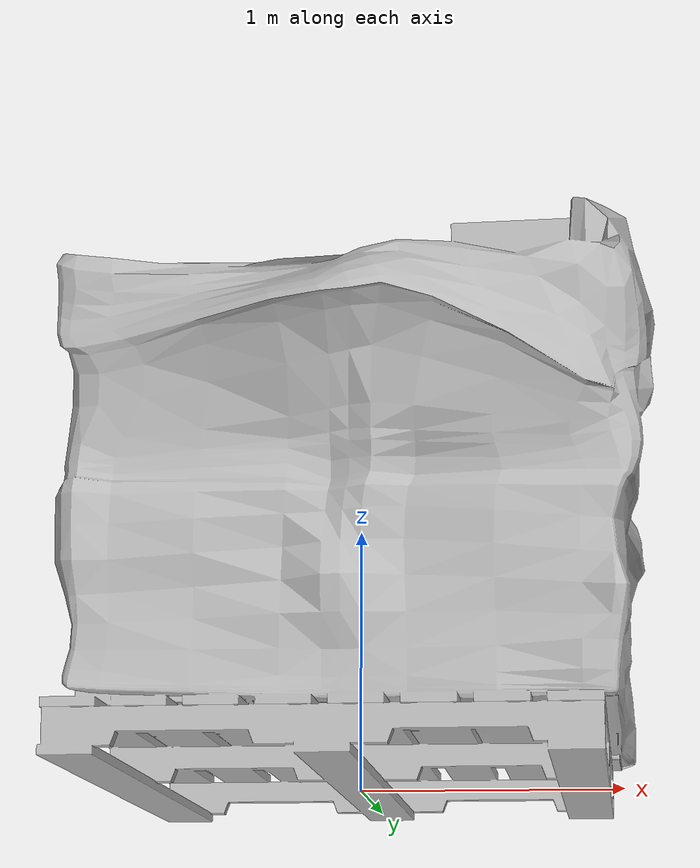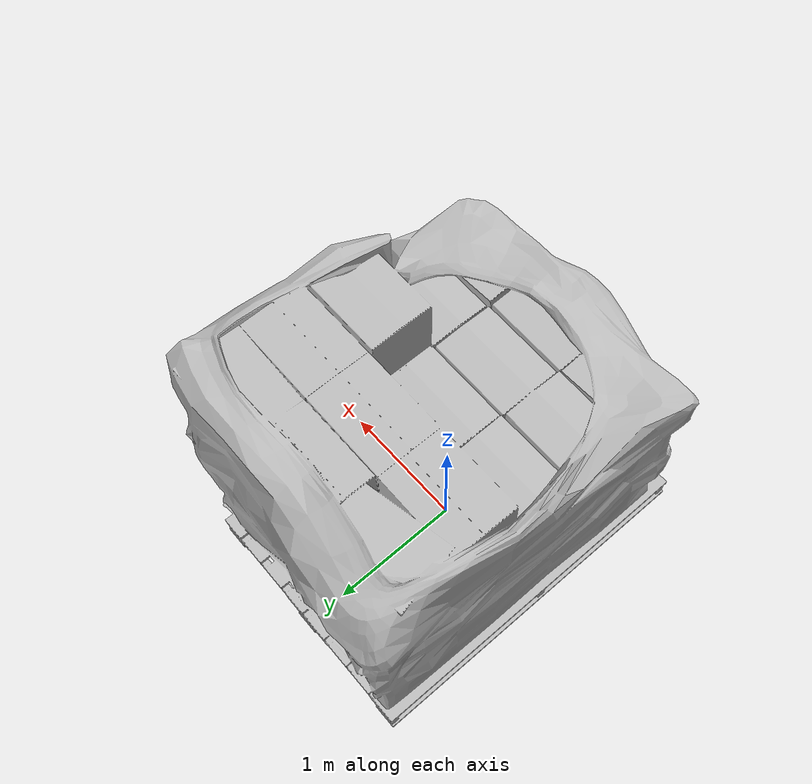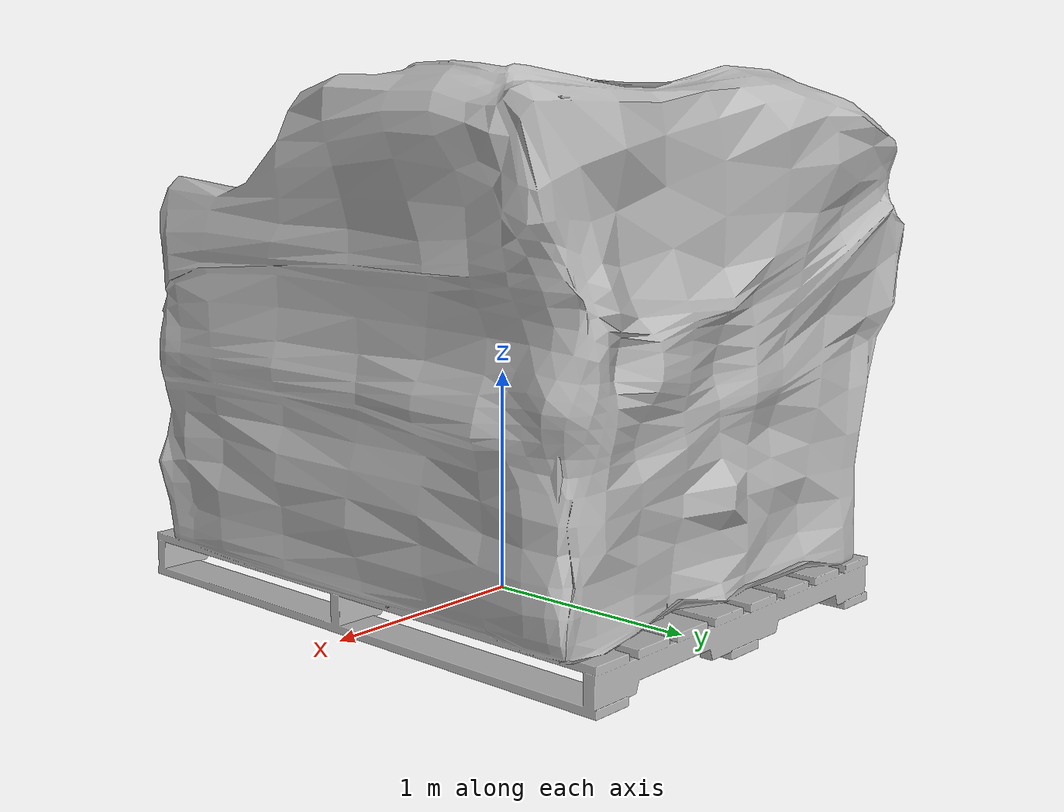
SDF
<?xml version='1.0'?>

<sdf version='1.6'>
  <model name='box_pallets_3'>
    <static>true</static>
    <link name='link'>
      <pose>0 0 0 0 0 0</pose>
      <collision name='collision'>
        <pose>0 0 1 0 0 0</pose>
        <geometry>
          <box>
            <size>2.2 2.8 2</size>
          </box>
        </geometry>
      </collision>
      <visual name='visual'>
        <pose>1.35 -1 0 0 0 -0.1</pose>
        <geometry>
          <mesh>
            <scale>0.02 0.02 0.02</scale>
            <uri>model://box_pallets_3/meshes/box_pallet.dae</uri>
           </mesh>
        </geometry>
      </visual>
    </link>
  </model>
</sdf>
